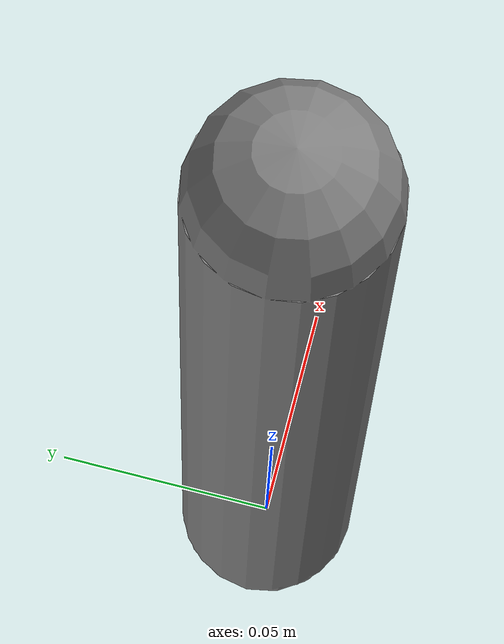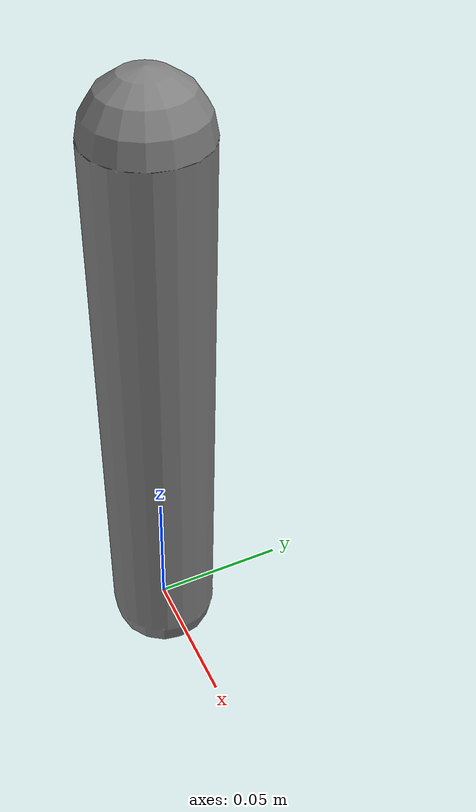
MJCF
<mujoco>
  <worldbody>
    <body name="link">
      <joint name="fixture_joint" type="hinge" axis="0 0 1" range="-1 1"/>
      <geom name="link_geom" type="capsule" size="0.02 0.1" pos="0 0 0.1"/>
      <site name="tip" pos="0 0 0"/>
    </body>
  </worldbody>
  <keyframe>
    <key name="home" qpos="0.25"/>
  </keyframe>
</mujoco>
